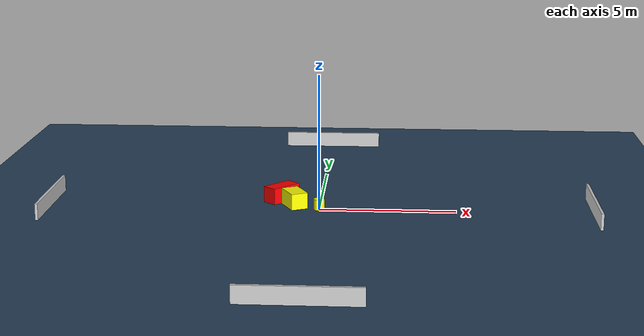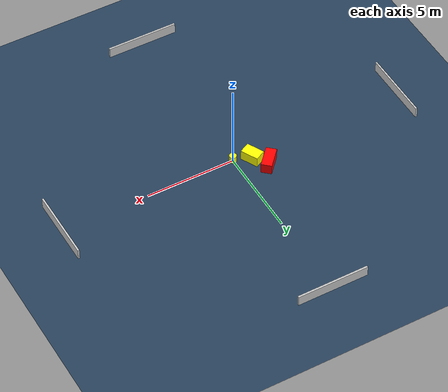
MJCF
<?xml version="1.0" ?>
<mujoco model="generated_environment">
  <option timestep="0.01" integrator="RK4" cone="elliptic"/>
  <default>
    <geom density="1"/>
  </default>
  <asset>
    <texture builtin="gradient" height="3072" name="skybox" rgb1="0.3 0.5 0.7" rgb2="0 0 0" type="skybox" width="512"/>
    <texture builtin="checker" height="300" name="groundplane" rgb1="0.2 0.3 0.4" rgb2="0.1 0.2 0.3" type="2d" width="300"/>
    <material name="groundplane" reflectance="0.2" texrepeat="5 5" texture="groundplane"/>
  </asset>
  <worldbody>
    <light dir="0 0 -1" directional="true" pos="0 0 1.5"/>
    <geom condim="3" friction="0.5 0.005 0.001" material="groundplane" name="floor" pos="0 0 0" size="0 0 0.05" type="plane"/>
    <body name="walls">
      <geom name="wall_1" condim="4" pos="-10.0 0.0 0.3" rgba="0.800000011920929 0.800000011920929 0.800000011920929 1.0" size="0.05 2.0 0.3" type="box"/>
      <geom name="wall_2" condim="4" pos="10.0 0.0 0.3" rgba="0.800000011920929 0.800000011920929 0.800000011920929 1.0" size="0.05 2.0 0.3" type="box"/>
      <geom name="wall_3" condim="4" pos="0.0 -10.0 0.3" rgba="0.800000011920929 0.800000011920929 0.800000011920929 1.0" size="2.0 0.05 0.3" type="box"/>
      <geom name="wall_4" condim="4" pos="0.0 10.0 0.3" rgba="0.800000011920929 0.800000011920929 0.800000011920929 1.0" size="2.0 0.05 0.3" type="box"/>
    </body>
    <body name="robot">
      <joint name="joint_x" type="slide" pos="0 0 0" axis="1 0 0"/>
      <joint name="joint_y" type="slide" pos="0 0 0" axis="0 1 0"/>
      <geom name="robot" type="cylinder" pos="0.0 0.0 0.2" size="0.2 0.2 0.0" mass="5.0" friction="1.0 0.005 0.0001" condim="4" rgba="1.0 1.0 0.0 1.0"/>
    </body>
    <body name="obstacle_1_movable">
      <geom name="obstacle_1_movable" condim="4" pos="-0.9368554777708203 0.39192429740806217 0.3" euler="0 0 206.66641150863896" friction="0.0 0.005 0.001" rgba="1.0 1.0 0.0 1.0" size="0.31881461600638333 0.5048273340543361 0.3" type="box" mass="0.1"/>
      <joint type="free"/>
    </body>
    <body name="obstacle_2_static">
      <geom name="obstacle_2_static" condim="4" pos="-1.4883933398140736 1.1474238207363725 0.3" euler="0 0 47.63170198813815" friction="0.0 0.005 0.001" rgba="1.0 0.0 0.0 1.0" size="0.6209213432706705 0.29218970443599357 0.3" type="box"/>
    </body>
  </worldbody>
  <actuator>
    <motor name="actuator_x" joint="joint_x" gear="1" ctrlrange="-1 1"/>
    <motor name="actuator_y" joint="joint_y" gear="1" ctrlrange="-1 1"/>
  </actuator>
</mujoco>
